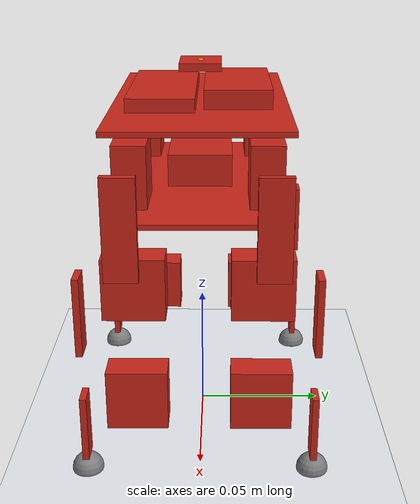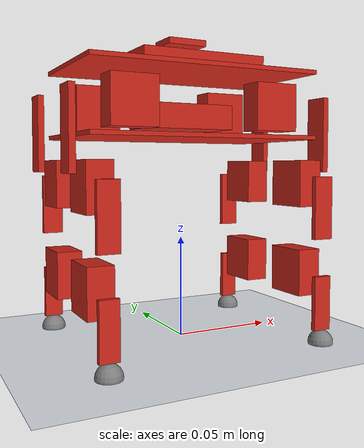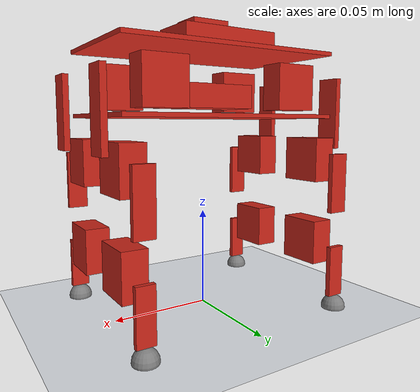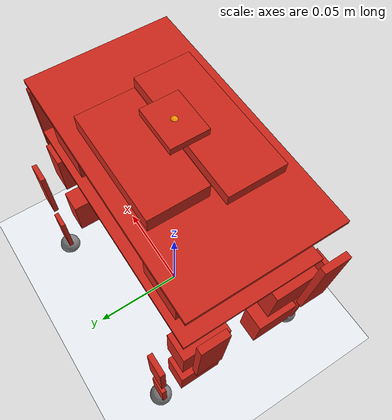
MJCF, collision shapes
<?xml version='1.0' encoding='utf-8'?>
<mujoco model="mg90s_dog_scene_gait">
  <include file="robot_gait.xml" />
  <visual>
    <global offwidth="1400" offheight="1000" />
    <headlight ambient="0.45 0.45 0.45" diffuse="0.65 0.65 0.65" />
  </visual>
  <worldbody>
    <light pos="0.3 -0.3 0.8" dir="-0.3 0.3 -0.8" />
    <geom name="floor" type="plane" size="2 2 0.1" rgba="0.92 0.94 0.96 1" friction="0.8 0.005 0.0001" />
  </worldbody>
</mujoco>

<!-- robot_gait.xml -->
<mujoco model="mg90s_dog">
  <compiler angle="radian" meshdir="assets" autolimits="true" />
  <option timestep="0.001" integrator="implicitfast" gravity="0 0 -9.80665" iterations="80" />
  <default>
    <joint damping="0.002" armature="0.00002" frictionloss="0.001" />
    <geom friction="0.8 0.005 0.0001" condim="3" solref="0.006 1" />
    <position kp="1.8" kv="0.035" forcerange="-0.06 0.06" />
  </default>
  <asset>
    <mesh name="fl_roll_MG90S" file="fl_roll_MG90S.stl" />
    <mesh name="fr_roll_MG90S" file="fr_roll_MG90S.stl" />
    <mesh name="bl_roll_MG90S" file="bl_roll_MG90S.stl" />
    <mesh name="br_roll_MG90S" file="br_roll_MG90S.stl" />
    <mesh name="body_base" file="body_base.stl" />
    <mesh name="electronics_deck" file="electronics_deck.stl" />
    <mesh name="imu_bridge" file="imu_bridge.stl" />
    <mesh name="battery_envelope" file="battery_envelope.stl" />
    <mesh name="PCA9685_envelope" file="PCA9685_envelope.stl" />
    <mesh name="controller_envelope" file="controller_envelope.stl" />
    <mesh name="IMU_envelope" file="IMU_envelope.stl" />
    <mesh name="wiring_regulator_allowance" file="wiring_regulator_allowance.stl" />
    <mesh name="fastener_mass_allowance" file="fastener_mass_allowance.stl" />
    <mesh name="fl_shoulder_bracket" file="fl_shoulder_bracket.stl" />
    <mesh name="fl_roll_horn" file="fl_roll_horn.stl" />
    <mesh name="fl_hip_MG90S" file="fl_hip_MG90S.stl" />
    <mesh name="fl_thigh_bracket" file="fl_thigh_bracket.stl" />
    <mesh name="fl_hip_horn" file="fl_hip_horn.stl" />
    <mesh name="fl_knee_MG90S" file="fl_knee_MG90S.stl" />
    <mesh name="fl_lower_leg" file="fl_lower_leg.stl" />
    <mesh name="fl_knee_horn" file="fl_knee_horn.stl" />
    <mesh name="fl_foot_pad" file="fl_foot_pad.stl" />
    <mesh name="fr_shoulder_bracket" file="fr_shoulder_bracket.stl" />
    <mesh name="fr_roll_horn" file="fr_roll_horn.stl" />
    <mesh name="fr_hip_MG90S" file="fr_hip_MG90S.stl" />
    <mesh name="fr_thigh_bracket" file="fr_thigh_bracket.stl" />
    <mesh name="fr_hip_horn" file="fr_hip_horn.stl" />
    <mesh name="fr_knee_MG90S" file="fr_knee_MG90S.stl" />
    <mesh name="fr_lower_leg" file="fr_lower_leg.stl" />
    <mesh name="fr_knee_horn" file="fr_knee_horn.stl" />
    <mesh name="fr_foot_pad" file="fr_foot_pad.stl" />
    <mesh name="bl_shoulder_bracket" file="bl_shoulder_bracket.stl" />
    <mesh name="bl_roll_horn" file="bl_roll_horn.stl" />
    <mesh name="bl_hip_MG90S" file="bl_hip_MG90S.stl" />
    <mesh name="bl_thigh_bracket" file="bl_thigh_bracket.stl" />
    <mesh name="bl_hip_horn" file="bl_hip_horn.stl" />
    <mesh name="bl_knee_MG90S" file="bl_knee_MG90S.stl" />
    <mesh name="bl_lower_leg" file="bl_lower_leg.stl" />
    <mesh name="bl_knee_horn" file="bl_knee_horn.stl" />
    <mesh name="bl_foot_pad" file="bl_foot_pad.stl" />
    <mesh name="br_shoulder_bracket" file="br_shoulder_bracket.stl" />
    <mesh name="br_roll_horn" file="br_roll_horn.stl" />
    <mesh name="br_hip_MG90S" file="br_hip_MG90S.stl" />
    <mesh name="br_thigh_bracket" file="br_thigh_bracket.stl" />
    <mesh name="br_hip_horn" file="br_hip_horn.stl" />
    <mesh name="br_knee_MG90S" file="br_knee_MG90S.stl" />
    <mesh name="br_lower_leg" file="br_lower_leg.stl" />
    <mesh name="br_knee_horn" file="br_knee_horn.stl" />
    <mesh name="br_foot_pad" file="br_foot_pad.stl" />
  </asset>
  <worldbody>
    <body name="body" pos="0 0 0.1195837861">
      <freejoint name="floating_base" />
      <site name="imu" pos="0 0 0.026" size="0.002" rgba="1 0.6 0 1" />
      <inertial mass="0.16085522828" pos="-1.746911734e-18 -0.0001740695674 -0.002806351854" fullinertia="7.964786281e-05 0.0001564696206 0.0001857229865 -2.75928781e-22 -1.389157581e-21 3.865778519e-07" />
      <geom name="fl_roll_MG90S" type="mesh" mesh="fl_roll_MG90S" rgba="0.12 0.22 0.38 1" contype="0" conaffinity="0" group="1" mass="0" />
      <geom name="fr_roll_MG90S" type="mesh" mesh="fr_roll_MG90S" rgba="0.12 0.22 0.38 1" contype="0" conaffinity="0" group="1" mass="0" />
      <geom name="bl_roll_MG90S" type="mesh" mesh="bl_roll_MG90S" rgba="0.12 0.22 0.38 1" contype="0" conaffinity="0" group="1" mass="0" />
      <geom name="br_roll_MG90S" type="mesh" mesh="br_roll_MG90S" rgba="0.12 0.22 0.38 1" contype="0" conaffinity="0" group="1" mass="0" />
      <geom name="body_base" type="mesh" mesh="body_base" rgba="0.81 0.86 0.91 1" contype="0" conaffinity="0" group="1" mass="0" />
      <geom name="electronics_deck" type="mesh" mesh="electronics_deck" rgba="0.81 0.86 0.91 1" contype="0" conaffinity="0" group="1" mass="0" />
      <geom name="imu_bridge" type="mesh" mesh="imu_bridge" rgba="0.81 0.86 0.91 1" contype="0" conaffinity="0" group="1" mass="0" />
      <geom name="battery_envelope" type="mesh" mesh="battery_envelope" rgba="0.91 0.6 0.2 1" contype="0" conaffinity="0" group="1" mass="0" />
      <geom name="PCA9685_envelope" type="mesh" mesh="PCA9685_envelope" rgba="0.12 0.55 0.39 1" contype="0" conaffinity="0" group="1" mass="0" />
      <geom name="controller_envelope" type="mesh" mesh="controller_envelope" rgba="0.12 0.55 0.39 1" contype="0" conaffinity="0" group="1" mass="0" />
      <geom name="IMU_envelope" type="mesh" mesh="IMU_envelope" rgba="0.12 0.55 0.39 1" contype="0" conaffinity="0" group="1" mass="0" />
      <geom name="wiring_regulator_allowance" type="mesh" mesh="wiring_regulator_allowance" rgba="0.18 0.19 0.2 1" contype="0" conaffinity="0" group="1" mass="0" />
      <geom name="fastener_mass_allowance" type="mesh" mesh="fastener_mass_allowance" rgba="0.18 0.19 0.2 1" contype="0" conaffinity="0" group="1" mass="0" />
      <geom name="body_collision_0" type="box" size="0.01125 0.0061 0.0114" pos="0.03675 0.024 -0.0056" rgba="0.8 0.15 0.1 0.25" group="3" mass="0" />
      <geom name="body_collision_1" type="box" size="0.01125 0.0061 0.0114" pos="0.03675 -0.024 -0.0056" rgba="0.8 0.15 0.1 0.25" group="3" mass="0" />
      <geom name="body_collision_2" type="box" size="0.01125 0.0061 0.0114" pos="-0.03675 0.024 -0.0056" rgba="0.8 0.15 0.1 0.25" group="3" mass="0" />
      <geom name="body_collision_3" type="box" size="0.01125 0.0061 0.0114" pos="-0.03675 -0.024 -0.0056" rgba="0.8 0.15 0.1 0.25" group="3" mass="0" />
      <geom name="body_collision_4" type="box" size="0.0225 0.012 0.006" pos="0 0 -0.01" rgba="0.8 0.15 0.1 0.25" group="3" mass="0" />
      <geom name="body_collision_5" type="box" size="0.031 0.0125 0.0025" pos="0 -0.014 0.016" rgba="0.8 0.15 0.1 0.25" group="3" mass="0" />
      <geom name="body_collision_6" type="box" size="0.025 0.0125 0.0035" pos="0 0.014 0.017" rgba="0.8 0.15 0.1 0.25" group="3" mass="0" />
      <geom name="body_collision_7" type="box" size="0.01 0.008 0.0015" pos="0 0 0.026" rgba="0.8 0.15 0.1 0.25" group="3" mass="0" />
      <geom name="body_collision_8" type="box" size="0.058 0.033 0.001" pos="0 0 -0.02" rgba="0.8 0.15 0.1 0.25" group="3" mass="0" />
      <geom name="body_collision_9" type="box" size="0.058 0.033 0.001" pos="0 0 0.012" rgba="0.8 0.15 0.1 0.25" group="3" mass="0" />
      <body name="fl_shoulder" pos="0.054 0.024 0">
        <joint name="fl_1" type="hinge" axis="1 0 0" range="-0.1047197551 0.3141592654" />
        <inertial mass="0.0171559814234" pos="0.001084470576 0.0005996856796 -0.03741114424" fullinertia="4.307659121e-06 3.909437951e-06 1.177529886e-06 -1.827410375e-08 -4.199043289e-07 -9.2045744e-08" />
        <geom name="fl_shoulder_bracket" type="mesh" mesh="fl_shoulder_bracket" rgba="0.81 0.86 0.91 1" contype="0" conaffinity="0" group="1" mass="0" />
        <geom name="fl_roll_horn" type="mesh" mesh="fl_roll_horn" rgba="0.18 0.19 0.2 1" contype="0" conaffinity="0" group="1" mass="0" />
        <geom name="fl_hip_MG90S" type="mesh" mesh="fl_hip_MG90S" rgba="0.12 0.22 0.38 1" contype="0" conaffinity="0" group="1" mass="0" />
        <geom name="fl_shoulder_collision_0" type="box" size="0.0061 0.01125 0.0114" pos="0 -0.00125 -0.0426" rgba="0.8 0.15 0.1 0.25" group="3" mass="0" />
        <geom name="fl_shoulder_collision_1" type="box" size="0.0015 0.006 0.0185" pos="0.011 0.002 -0.0185" rgba="0.8 0.15 0.1 0.25" group="3" mass="0" />
        <body name="fl_thigh" pos="0 0.016 -0.037">
          <joint name="fl_2" type="hinge" axis="0 1 0" range="-0.837758041 0.3490658504" />
          <inertial mass="0.0174277595713" pos="0.0008068119681 -0.01315870807 -0.04503467837" fullinertia="4.878721752e-06 3.96530564e-06 1.698335013e-06 -1.092244822e-07 -4.01146999e-08 -1.153992655e-06" />
          <geom name="fl_thigh_bracket" type="mesh" mesh="fl_thigh_bracket" rgba="0.81 0.86 0.91 1" contype="0" conaffinity="0" group="1" mass="0" />
          <geom name="fl_hip_horn" type="mesh" mesh="fl_hip_horn" rgba="0.18 0.19 0.2 1" contype="0" conaffinity="0" group="1" mass="0" />
          <geom name="fl_knee_MG90S" type="mesh" mesh="fl_knee_MG90S" rgba="0.12 0.22 0.38 1" contype="0" conaffinity="0" group="1" mass="0" />
          <geom name="fl_thigh_collision_0" type="box" size="0.005 0.00125 0.015" pos="0 0.00305 -0.017" rgba="0.8 0.15 0.1 0.25" group="3" mass="0" />
          <geom name="fl_thigh_collision_1" type="box" size="0.0061 0.01125 0.0114" pos="0 -0.01725 -0.0496" rgba="0.8 0.15 0.1 0.25" group="3" mass="0" />
          <body name="fl_shank" pos="0 0 -0.044">
            <joint name="fl_3" type="hinge" axis="0 1 0" range="0.0872664626 1.483529864" />
            <inertial mass="0.00248693251831" pos="2.949931231e-13 0.002922681153 -0.01868466929" fullinertia="7.196081843e-07 7.382120084e-07 3.714277955e-08 9.927656636e-20 1.146331928e-17 1.74278207e-08" />
            <geom name="fl_lower_leg" type="mesh" mesh="fl_lower_leg" rgba="0.81 0.86 0.91 1" contype="0" conaffinity="0" group="1" mass="0" />
            <geom name="fl_knee_horn" type="mesh" mesh="fl_knee_horn" rgba="0.18 0.19 0.2 1" contype="0" conaffinity="0" group="1" mass="0" />
            <geom name="fl_foot_pad" type="mesh" mesh="fl_foot_pad" rgba="0.15 0.18 0.2 1" contype="0" conaffinity="0" group="1" mass="0" />
            <geom name="fl_shank_collision_0" type="box" size="0.0045 0.00125 0.013" pos="0 0.00305 -0.019" rgba="0.8 0.15 0.1 0.25" group="3" mass="0" />
            <site name="fl_foot" pos="0 0.00305 -0.038" size="0.006" />
            <geom name="fl_shank_collision_1" type="sphere" size="0.005" pos="0 0.00305 -0.038" rgba="0.8 0.15 0.1 0.25" group="3" mass="0" />
          </body>
        </body>
      </body>
      <body name="fr_shoulder" pos="0.054 -0.024 0">
        <joint name="fr_1" type="hinge" axis="1 0 0" range="-0.3141592654 0.1047197551" />
        <inertial mass="0.0171559814234" pos="0.001084470576 -0.0005996856796 -0.03741114424" fullinertia="4.307659121e-06 3.909437951e-06 1.177529886e-06 1.827410375e-08 -4.199043289e-07 9.2045744e-08" />
        <geom name="fr_shoulder_bracket" type="mesh" mesh="fr_shoulder_bracket" rgba="0.81 0.86 0.91 1" contype="0" conaffinity="0" group="1" mass="0" />
        <geom name="fr_roll_horn" type="mesh" mesh="fr_roll_horn" rgba="0.18 0.19 0.2 1" contype="0" conaffinity="0" group="1" mass="0" />
        <geom name="fr_hip_MG90S" type="mesh" mesh="fr_hip_MG90S" rgba="0.12 0.22 0.38 1" contype="0" conaffinity="0" group="1" mass="0" />
        <geom name="fr_shoulder_collision_0" type="box" size="0.0061 0.01125 0.0114" pos="0 0.00125 -0.0426" rgba="0.8 0.15 0.1 0.25" group="3" mass="0" />
        <geom name="fr_shoulder_collision_1" type="box" size="0.0015 0.006 0.0185" pos="0.011 -0.002 -0.0185" rgba="0.8 0.15 0.1 0.25" group="3" mass="0" />
        <body name="fr_thigh" pos="0 -0.016 -0.037">
          <joint name="fr_2" type="hinge" axis="0 1 0" range="-0.837758041 0.3490658504" />
          <inertial mass="0.0174277595713" pos="0.0008068119681 0.01315870807 -0.04503467837" fullinertia="4.878721752e-06 3.96530564e-06 1.698335013e-06 1.092244822e-07 -4.01146999e-08 1.153992655e-06" />
          <geom name="fr_thigh_bracket" type="mesh" mesh="fr_thigh_bracket" rgba="0.81 0.86 0.91 1" contype="0" conaffinity="0" group="1" mass="0" />
          <geom name="fr_hip_horn" type="mesh" mesh="fr_hip_horn" rgba="0.18 0.19 0.2 1" contype="0" conaffinity="0" group="1" mass="0" />
          <geom name="fr_knee_MG90S" type="mesh" mesh="fr_knee_MG90S" rgba="0.12 0.22 0.38 1" contype="0" conaffinity="0" group="1" mass="0" />
          <geom name="fr_thigh_collision_0" type="box" size="0.005 0.00125 0.015" pos="0 -0.00305 -0.017" rgba="0.8 0.15 0.1 0.25" group="3" mass="0" />
          <geom name="fr_thigh_collision_1" type="box" size="0.0061 0.01125 0.0114" pos="0 0.01725 -0.0496" rgba="0.8 0.15 0.1 0.25" group="3" mass="0" />
          <body name="fr_shank" pos="0 0 -0.044">
            <joint name="fr_3" type="hinge" axis="0 1 0" range="0.0872664626 1.483529864" />
            <inertial mass="0.00248693251831" pos="2.949931247e-13 -0.002922681153 -0.01868466929" fullinertia="7.196081843e-07 7.382120084e-07 3.714277955e-08 -9.9276541e-20 1.146331968e-17 -1.74278207e-08" />
            <geom name="fr_lower_leg" type="mesh" mesh="fr_lower_leg" rgba="0.81 0.86 0.91 1" contype="0" conaffinity="0" group="1" mass="0" />
            <geom name="fr_knee_horn" type="mesh" mesh="fr_knee_horn" rgba="0.18 0.19 0.2 1" contype="0" conaffinity="0" group="1" mass="0" />
            <geom name="fr_foot_pad" type="mesh" mesh="fr_foot_pad" rgba="0.15 0.18 0.2 1" contype="0" conaffinity="0" group="1" mass="0" />
            <geom name="fr_shank_collision_0" type="box" size="0.0045 0.00125 0.013" pos="0 -0.00305 -0.019" rgba="0.8 0.15 0.1 0.25" group="3" mass="0" />
            <site name="fr_foot" pos="0 -0.00305 -0.038" size="0.006" />
            <geom name="fr_shank_collision_1" type="sphere" size="0.005" pos="0 -0.00305 -0.038" rgba="0.8 0.15 0.1 0.25" group="3" mass="0" />
          </body>
        </body>
      </body>
      <body name="bl_shoulder" pos="-0.054 0.024 0">
        <joint name="bl_1" type="hinge" axis="1 0 0" range="-0.1047197551 0.3141592654" />
        <inertial mass="0.0171559814234" pos="-0.001084470576 0.0005996856796 -0.03741114424" fullinertia="4.307659121e-06 3.909437951e-06 1.177529886e-06 1.827410375e-08 4.199043289e-07 -9.2045744e-08" />
        <geom name="bl_shoulder_bracket" type="mesh" mesh="bl_shoulder_bracket" rgba="0.81 0.86 0.91 1" contype="0" conaffinity="0" group="1" mass="0" />
        <geom name="bl_roll_horn" type="mesh" mesh="bl_roll_horn" rgba="0.18 0.19 0.2 1" contype="0" conaffinity="0" group="1" mass="0" />
        <geom name="bl_hip_MG90S" type="mesh" mesh="bl_hip_MG90S" rgba="0.12 0.22 0.38 1" contype="0" conaffinity="0" group="1" mass="0" />
        <geom name="bl_shoulder_collision_0" type="box" size="0.0061 0.01125 0.0114" pos="0 -0.00125 -0.0426" rgba="0.8 0.15 0.1 0.25" group="3" mass="0" />
        <geom name="bl_shoulder_collision_1" type="box" size="0.0015 0.006 0.0185" pos="-0.011 0.002 -0.0185" rgba="0.8 0.15 0.1 0.25" group="3" mass="0" />
        <body name="bl_thigh" pos="0 0.016 -0.037">
          <joint name="bl_2" type="hinge" axis="0 1 0" range="-0.837758041 0.3490658504" />
          <inertial mass="0.0174277595713" pos="-0.0008068119681 -0.01315870807 -0.04503467837" fullinertia="4.878721752e-06 3.96530564e-06 1.698335013e-06 1.092244822e-07 4.01146999e-08 -1.153992655e-06" />
          <geom name="bl_thigh_bracket" type="mesh" mesh="bl_thigh_bracket" rgba="0.81 0.86 0.91 1" contype="0" conaffinity="0" group="1" mass="0" />
          <geom name="bl_hip_horn" type="mesh" mesh="bl_hip_horn" rgba="0.18 0.19 0.2 1" contype="0" conaffinity="0" group="1" mass="0" />
          <geom name="bl_knee_MG90S" type="mesh" mesh="bl_knee_MG90S" rgba="0.12 0.22 0.38 1" contype="0" conaffinity="0" group="1" mass="0" />
          <geom name="bl_thigh_collision_0" type="box" size="0.005 0.00125 0.015" pos="0 0.00305 -0.017" rgba="0.8 0.15 0.1 0.25" group="3" mass="0" />
          <geom name="bl_thigh_collision_1" type="box" size="0.0061 0.01125 0.0114" pos="0 -0.01725 -0.0496" rgba="0.8 0.15 0.1 0.25" group="3" mass="0" />
          <body name="bl_shank" pos="0 0 -0.044">
            <joint name="bl_3" type="hinge" axis="0 1 0" range="0.0872664626 1.483529864" />
            <inertial mass="0.00248693251831" pos="-2.949931247e-13 0.002922681153 -0.01868466929" fullinertia="7.196081843e-07 7.382120084e-07 3.714277955e-08 -9.9276541e-20 -1.146331968e-17 1.74278207e-08" />
            <geom name="bl_lower_leg" type="mesh" mesh="bl_lower_leg" rgba="0.81 0.86 0.91 1" contype="0" conaffinity="0" group="1" mass="0" />
            <geom name="bl_knee_horn" type="mesh" mesh="bl_knee_horn" rgba="0.18 0.19 0.2 1" contype="0" conaffinity="0" group="1" mass="0" />
            <geom name="bl_foot_pad" type="mesh" mesh="bl_foot_pad" rgba="0.15 0.18 0.2 1" contype="0" conaffinity="0" group="1" mass="0" />
            <geom name="bl_shank_collision_0" type="box" size="0.0045 0.00125 0.013" pos="0 0.00305 -0.019" rgba="0.8 0.15 0.1 0.25" group="3" mass="0" />
            <site name="bl_foot" pos="0 0.00305 -0.038" size="0.006" />
            <geom name="bl_shank_collision_1" type="sphere" size="0.005" pos="0 0.00305 -0.038" rgba="0.8 0.15 0.1 0.25" group="3" mass="0" />
          </body>
        </body>
      </body>
      <body name="br_shoulder" pos="-0.054 -0.024 0">
        <joint name="br_1" type="hinge" axis="1 0 0" range="-0.3141592654 0.1047197551" />
        <inertial mass="0.0171559814234" pos="-0.001084470576 -0.0005996856796 -0.03741114424" fullinertia="4.307659121e-06 3.909437951e-06 1.177529886e-06 -1.827410375e-08 4.199043289e-07 9.2045744e-08" />
        <geom name="br_shoulder_bracket" type="mesh" mesh="br_shoulder_bracket" rgba="0.81 0.86 0.91 1" contype="0" conaffinity="0" group="1" mass="0" />
        <geom name="br_roll_horn" type="mesh" mesh="br_roll_horn" rgba="0.18 0.19 0.2 1" contype="0" conaffinity="0" group="1" mass="0" />
        <geom name="br_hip_MG90S" type="mesh" mesh="br_hip_MG90S" rgba="0.12 0.22 0.38 1" contype="0" conaffinity="0" group="1" mass="0" />
        <geom name="br_shoulder_collision_0" type="box" size="0.0061 0.01125 0.0114" pos="0 0.00125 -0.0426" rgba="0.8 0.15 0.1 0.25" group="3" mass="0" />
        <geom name="br_shoulder_collision_1" type="box" size="0.0015 0.006 0.0185" pos="-0.011 -0.002 -0.0185" rgba="0.8 0.15 0.1 0.25" group="3" mass="0" />
        <body name="br_thigh" pos="0 -0.016 -0.037">
          <joint name="br_2" type="hinge" axis="0 1 0" range="-0.837758041 0.3490658504" />
          <inertial mass="0.0174277595713" pos="-0.0008068119681 0.01315870807 -0.04503467837" fullinertia="4.878721752e-06 3.96530564e-06 1.698335013e-06 -1.092244822e-07 4.01146999e-08 1.153992655e-06" />
          <geom name="br_thigh_bracket" type="mesh" mesh="br_thigh_bracket" rgba="0.81 0.86 0.91 1" contype="0" conaffinity="0" group="1" mass="0" />
          <geom name="br_hip_horn" type="mesh" mesh="br_hip_horn" rgba="0.18 0.19 0.2 1" contype="0" conaffinity="0" group="1" mass="0" />
          <geom name="br_knee_MG90S" type="mesh" mesh="br_knee_MG90S" rgba="0.12 0.22 0.38 1" contype="0" conaffinity="0" group="1" mass="0" />
          <geom name="br_thigh_collision_0" type="box" size="0.005 0.00125 0.015" pos="0 -0.00305 -0.017" rgba="0.8 0.15 0.1 0.25" group="3" mass="0" />
          <geom name="br_thigh_collision_1" type="box" size="0.0061 0.01125 0.0114" pos="0 0.01725 -0.0496" rgba="0.8 0.15 0.1 0.25" group="3" mass="0" />
          <body name="br_shank" pos="0 0 -0.044">
            <joint name="br_3" type="hinge" axis="0 1 0" range="0.0872664626 1.483529864" />
            <inertial mass="0.00248693251831" pos="-2.949931247e-13 -0.002922681153 -0.01868466929" fullinertia="7.196081843e-07 7.382120084e-07 3.714277955e-08 9.9276541e-20 -1.146331968e-17 -1.74278207e-08" />
            <geom name="br_lower_leg" type="mesh" mesh="br_lower_leg" rgba="0.81 0.86 0.91 1" contype="0" conaffinity="0" group="1" mass="0" />
            <geom name="br_knee_horn" type="mesh" mesh="br_knee_horn" rgba="0.18 0.19 0.2 1" contype="0" conaffinity="0" group="1" mass="0" />
            <geom name="br_foot_pad" type="mesh" mesh="br_foot_pad" rgba="0.15 0.18 0.2 1" contype="0" conaffinity="0" group="1" mass="0" />
            <geom name="br_shank_collision_0" type="box" size="0.0045 0.00125 0.013" pos="0 -0.00305 -0.019" rgba="0.8 0.15 0.1 0.25" group="3" mass="0" />
            <site name="br_foot" pos="0 -0.00305 -0.038" size="0.006" />
            <geom name="br_shank_collision_1" type="sphere" size="0.005" pos="0 -0.00305 -0.038" rgba="0.8 0.15 0.1 0.25" group="3" mass="0" />
          </body>
        </body>
      </body>
    </body>
  </worldbody>
  <actuator>
    <position name="fl_1" joint="fl_1" ctrlrange="-0.1047197551 0.3141592654" />
    <position name="fl_2" joint="fl_2" ctrlrange="-0.837758041 0.3490658504" />
    <position name="fl_3" joint="fl_3" ctrlrange="0.0872664626 1.483529864" />
    <position name="fr_1" joint="fr_1" ctrlrange="-0.3141592654 0.1047197551" />
    <position name="fr_2" joint="fr_2" ctrlrange="-0.837758041 0.3490658504" />
    <position name="fr_3" joint="fr_3" ctrlrange="0.0872664626 1.483529864" />
    <position name="bl_1" joint="bl_1" ctrlrange="-0.1047197551 0.3141592654" />
    <position name="bl_2" joint="bl_2" ctrlrange="-0.837758041 0.3490658504" />
    <position name="bl_3" joint="bl_3" ctrlrange="0.0872664626 1.483529864" />
    <position name="br_1" joint="br_1" ctrlrange="-0.3141592654 0.1047197551" />
    <position name="br_2" joint="br_2" ctrlrange="-0.837758041 0.3490658504" />
    <position name="br_3" joint="br_3" ctrlrange="0.0872664626 1.483529864" />
  </actuator>
  <sensor>
    <touch name="fl_foot_contact" site="fl_foot" />
    <touch name="fr_foot_contact" site="fr_foot" />
    <touch name="bl_foot_contact" site="bl_foot" />
    <touch name="br_foot_contact" site="br_foot" />
    <gyro name="imu_gyro" site="imu" />
    <accelerometer name="imu_accel" site="imu" />
    <framequat name="ground_truth_orientation" objtype="site" objname="imu" />
  </sensor>
  <keyframe>
    <key name="stand" qpos="0 0 0.1195837861 1 0 0 0 0 -0.3384389133 0.7330382858 0 -0.3384389133 0.7330382858 0 -0.3384389133 0.7330382858 0 -0.3384389133 0.7330382858" ctrl="0 -0.3384389133 0.7330382858 0 -0.3384389133 0.7330382858 0 -0.3384389133 0.7330382858 0 -0.3384389133 0.7330382858" />
  </keyframe>
</mujoco>
